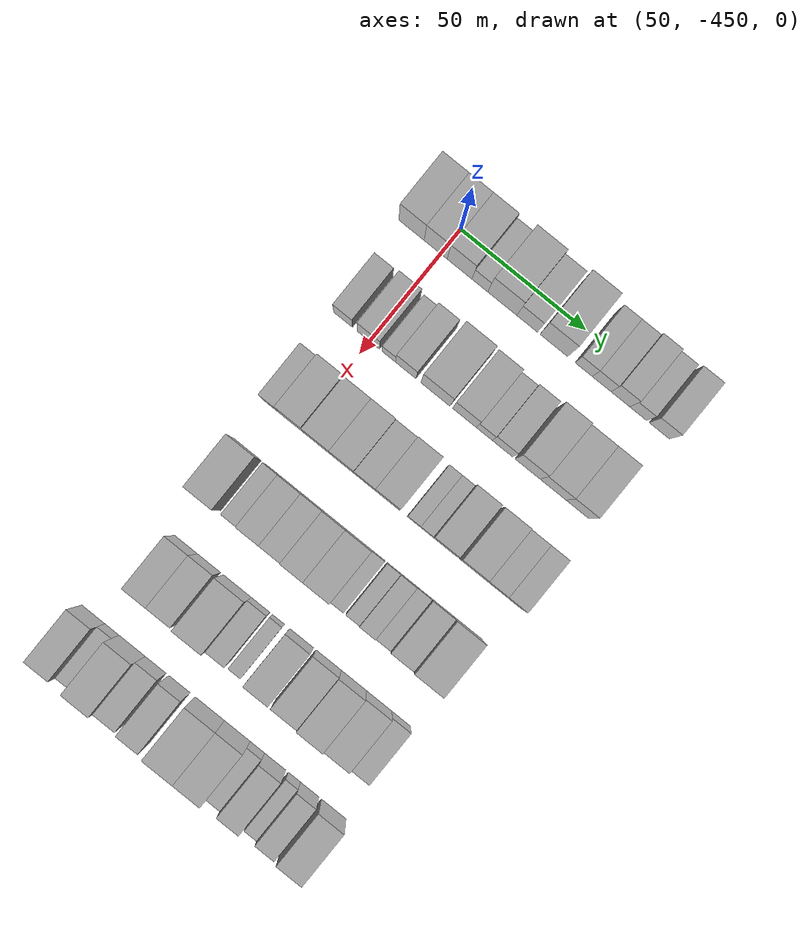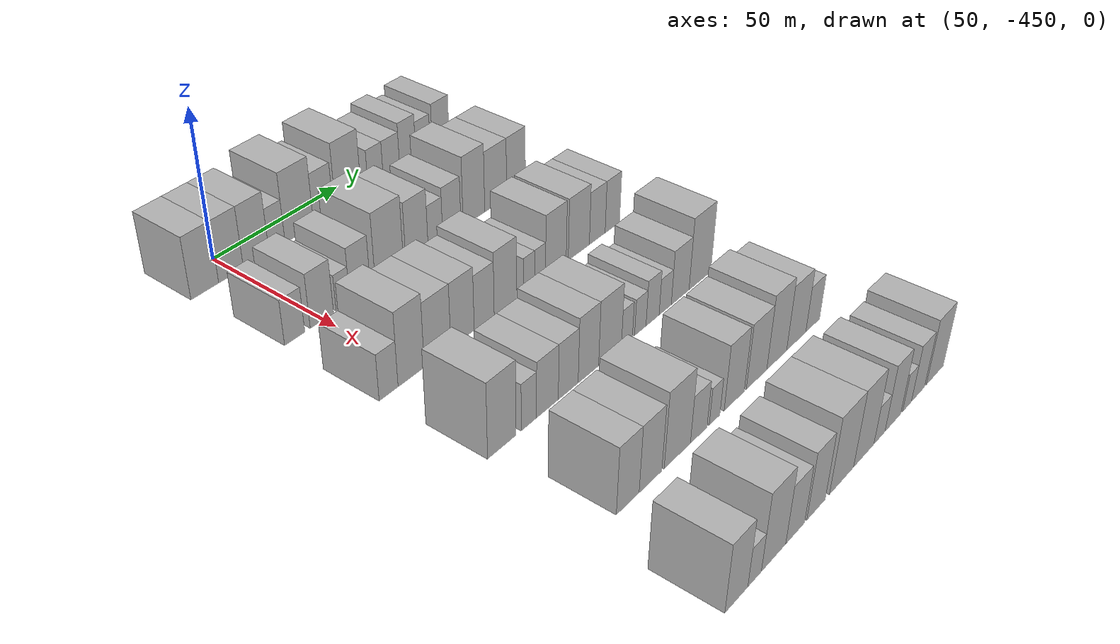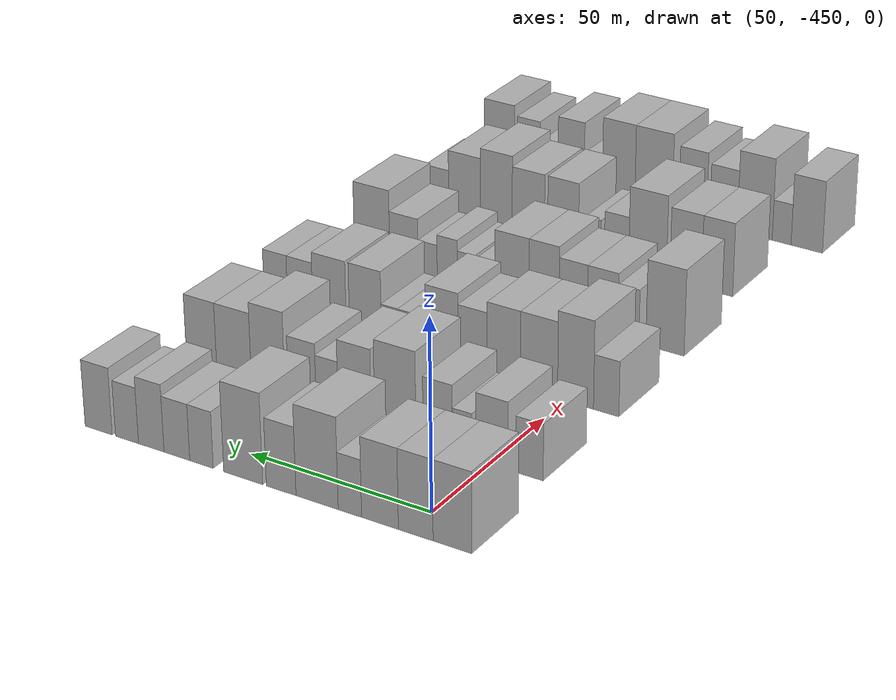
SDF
<sdf version="1.6">
 <world name="default">
  <model name="building_11">
   <static>1</static>
   <pose>50.0000 -461.7332 0 0.000000 0.000000 0.000000</pose>
   <link name="link">
    <pose>0 0 10.50 0 0 0</pose>
    <collision name="collision"><geometry><box><size>20.0000 10.0792 21.0000</size></box></geometry></collision>
    <visual name="visual">
     <cast_shadows>0</cast_shadows>
     <geometry><box><size>20.0000 10.0792 21.0000</size></box></geometry>
     <material>
      <script>
       <uri>model://HANNAS_wall/materials/scripts</uri>
       <uri>model://HANNAS_wall/materials/textures</uri>
       <name>vrc/HANNAS_wall</name>
      </script>
     </material>
    </visual>
   </link>
  </model>
  <model name="building_12">
   <static>1</static>
   <pose>50.0000 -452.0765 0 0.000000 0.000000 0.000000</pose>
   <link name="link">
    <pose>0 0 10.50 0 0 0</pose>
    <collision name="collision"><geometry><box><size>20.0000 9.2342 21.0000</size></box></geometry></collision>
    <visual name="visual">
     <cast_shadows>0</cast_shadows>
     <geometry><box><size>20.0000 9.2342 21.0000</size></box></geometry>
     <material>
      <script>
       <uri>model://HANNAS_wall/materials/scripts</uri>
       <uri>model://HANNAS_wall/materials/textures</uri>
       <name>vrc/HANNAS_wall</name>
      </script>
     </material>
    </visual>
   </link>
  </model>
  <model name="building_13">
   <static>1</static>
   <pose>50.0000 -442.5232 0 0.000000 0.000000 0.000000</pose>
   <link name="link">
    <pose>0 0 10.50 0 0 0</pose>
    <collision name="collision"><geometry><box><size>20.0000 9.8725 21.0000</size></box></geometry></collision>
    <visual name="visual">
     <cast_shadows>0</cast_shadows>
     <geometry><box><size>20.0000 9.8725 21.0000</size></box></geometry>
     <material>
      <script>
       <uri>model://HANNAS_wall/materials/scripts</uri>
       <uri>model://HANNAS_wall/materials/textures</uri>
       <name>vrc/HANNAS_wall</name>
      </script>
     </material>
    </visual>
   </link>
  </model>
  <model name="building_14">
   <static>1</static>
   <pose>50.0000 -434.4015 0 0.000000 0.000000 0.000000</pose>
   <link name="link">
    <pose>0 0 7.50 0 0 0</pose>
    <collision name="collision"><geometry><box><size>20.0000 6.3709 15.0000</size></box></geometry></collision>
    <visual name="visual">
     <cast_shadows>0</cast_shadows>
     <geometry><box><size>20.0000 6.3709 15.0000</size></box></geometry>
     <material>
      <script>
       <uri>model://HANNAS_wall/materials/scripts</uri>
       <uri>model://HANNAS_wall/materials/textures</uri>
       <name>vrc/HANNAS_wall</name>
      </script>
     </material>
    </visual>
   </link>
  </model>
  <model name="building_15">
   <static>1</static>
   <pose>50.0000 -425.4119 0 0.000000 0.000000 0.000000</pose>
   <link name="link">
    <pose>0 0 12.00 0 0 0</pose>
    <collision name="collision"><geometry><box><size>20.0000 11.6083 24.0000</size></box></geometry></collision>
    <visual name="visual">
     <cast_shadows>0</cast_shadows>
     <geometry><box><size>20.0000 11.6083 24.0000</size></box></geometry>
     <material>
      <script>
       <uri>model://HANNAS_wall/materials/scripts</uri>
       <uri>model://HANNAS_wall/materials/textures</uri>
       <name>vrc/HANNAS_wall</name>
      </script>
     </material>
    </visual>
   </link>
  </model>
  <model name="building_16">
   <static>1</static>
   <pose>50.0000 -415.4682 0 0.000000 0.000000 0.000000</pose>
   <link name="link">
    <pose>0 0 9.00 0 0 0</pose>
    <collision name="collision"><geometry><box><size>20.0000 8.2792 18.0000</size></box></geometry></collision>
    <visual name="visual">
     <cast_shadows>0</cast_shadows>
     <geometry><box><size>20.0000 8.2792 18.0000</size></box></geometry>
     <material>
      <script>
       <uri>model://HANNAS_wall/materials/scripts</uri>
       <uri>model://HANNAS_wall/materials/textures</uri>
       <name>vrc/HANNAS_wall</name>
      </script>
     </material>
    </visual>
   </link>
  </model>
  <model name="building_17">
   <static>1</static>
   <pose>50.0000 -404.8006 0 0.000000 0.000000 0.000000</pose>
   <link name="link">
    <pose>0 0 12.00 0 0 0</pose>
    <collision name="collision"><geometry><box><size>20.0000 11.0559 24.0000</size></box></geometry></collision>
    <visual name="visual">
     <cast_shadows>0</cast_shadows>
     <geometry><box><size>20.0000 11.0559 24.0000</size></box></geometry>
     <material>
      <script>
       <uri>model://HANNAS_wall/materials/scripts</uri>
       <uri>model://HANNAS_wall/materials/textures</uri>
       <name>vrc/HANNAS_wall</name>
      </script>
     </material>
    </visual>
   </link>
  </model>
  <model name="building_18">
   <static>1</static>
   <pose>50.0000 -392.8752 0 0.000000 0.000000 0.000000</pose>
   <link name="link">
    <pose>0 0 7.50 0 0 0</pose>
    <collision name="collision"><geometry><box><size>20.0000 6.7949 15.0000</size></box></geometry></collision>
    <visual name="visual">
     <cast_shadows>0</cast_shadows>
     <geometry><box><size>20.0000 6.7949 15.0000</size></box></geometry>
     <material>
      <script>
       <uri>model://HANNAS_wall/materials/scripts</uri>
       <uri>model://HANNAS_wall/materials/textures</uri>
       <name>vrc/HANNAS_wall</name>
      </script>
     </material>
    </visual>
   </link>
  </model>
  <model name="building_19">
   <static>1</static>
   <pose>50.0000 -385.7423 0 0.000000 0.000000 0.000000</pose>
   <link name="link">
    <pose>0 0 7.50 0 0 0</pose>
    <collision name="collision"><geometry><box><size>20.0000 7.4709 15.0000</size></box></geometry></collision>
    <visual name="visual">
     <cast_shadows>0</cast_shadows>
     <geometry><box><size>20.0000 7.4709 15.0000</size></box></geometry>
     <material>
      <script>
       <uri>model://HANNAS_wall/materials/scripts</uri>
       <uri>model://HANNAS_wall/materials/textures</uri>
       <name>vrc/HANNAS_wall</name>
      </script>
     </material>
    </visual>
   </link>
  </model>
  <model name="building_20">
   <static>1</static>
   <pose>50.0000 -378.2463 0 0.000000 0.000000 0.000000</pose>
   <link name="link">
    <pose>0 0 9.00 0 0 0</pose>
    <collision name="collision"><geometry><box><size>20.0000 7.5212 18.0000</size></box></geometry></collision>
    <visual name="visual">
     <cast_shadows>0</cast_shadows>
     <geometry><box><size>20.0000 7.5212 18.0000</size></box></geometry>
     <material>
      <script>
       <uri>model://HANNAS_wall/materials/scripts</uri>
       <uri>model://HANNAS_wall/materials/textures</uri>
       <name>vrc/HANNAS_wall</name>
      </script>
     </material>
    </visual>
   </link>
  </model>
  <model name="building_21">
   <static>1</static>
   <pose>50.0000 -371.0788 0 0.000000 0.000000 0.000000</pose>
   <link name="link">
    <pose>0 0 7.50 0 0 0</pose>
    <collision name="collision"><geometry><box><size>20.0000 6.8137 15.0000</size></box></geometry></collision>
    <visual name="visual">
     <cast_shadows>0</cast_shadows>
     <geometry><box><size>20.0000 6.8137 15.0000</size></box></geometry>
     <material>
      <script>
       <uri>model://HANNAS_wall/materials/scripts</uri>
       <uri>model://HANNAS_wall/materials/textures</uri>
       <name>vrc/HANNAS_wall</name>
      </script>
     </material>
    </visual>
   </link>
  </model>
  <model name="building_22">
   <static>1</static>
   <pose>50.0000 -362.6278 0 0.000000 0.000000 0.000000</pose>
   <link name="link">
    <pose>0 0 9.00 0 0 0</pose>
    <collision name="collision"><geometry><box><size>20.0000 8.0885 18.0000</size></box></geometry></collision>
    <visual name="visual">
     <cast_shadows>0</cast_shadows>
     <geometry><box><size>20.0000 8.0885 18.0000</size></box></geometry>
     <material>
      <script>
       <uri>model://HANNAS_wall/materials/scripts</uri>
       <uri>model://HANNAS_wall/materials/textures</uri>
       <name>vrc/HANNAS_wall</name>
      </script>
     </material>
    </visual>
   </link>
  </model>
  <model name="building_138">
   <static>1</static>
   <pose>85.0000 -460.6675 0 0.000000 0.000000 0.000000</pose>
   <link name="link">
    <pose>0 0 7.50 0 0 0</pose>
    <collision name="collision"><geometry><box><size>20.0000 7.4258 15.0000</size></box></geometry></collision>
    <visual name="visual">
     <cast_shadows>0</cast_shadows>
     <geometry><box><size>20.0000 7.4258 15.0000</size></box></geometry>
     <material>
      <script>
       <uri>model://HANNAS_wall/materials/scripts</uri>
       <uri>model://HANNAS_wall/materials/textures</uri>
       <name>vrc/HANNAS_wall</name>
      </script>
     </material>
    </visual>
   </link>
  </model>
  <model name="building_139">
   <static>1</static>
   <pose>85.0000 -450.5459 0 0.000000 0.000000 0.000000</pose>
   <link name="link">
    <pose>0 0 9.00 0 0 0</pose>
    <collision name="collision"><geometry><box><size>20.0000 8.8174 18.0000</size></box></geometry></collision>
    <visual name="visual">
     <cast_shadows>0</cast_shadows>
     <geometry><box><size>20.0000 8.8174 18.0000</size></box></geometry>
     <material>
      <script>
       <uri>model://HANNAS_wall/materials/scripts</uri>
       <uri>model://HANNAS_wall/materials/textures</uri>
       <name>vrc/HANNAS_wall</name>
      </script>
     </material>
    </visual>
   </link>
  </model>
  <model name="building_140">
   <static>1</static>
   <pose>85.0000 -442.4545 0 0.000000 0.000000 0.000000</pose>
   <link name="link">
    <pose>0 0 6.00 0 0 0</pose>
    <collision name="collision"><geometry><box><size>20.0000 5.3653 12.0000</size></box></geometry></collision>
    <visual name="visual">
     <cast_shadows>0</cast_shadows>
     <geometry><box><size>20.0000 5.3653 12.0000</size></box></geometry>
     <material>
      <script>
       <uri>model://HANNAS_wall/materials/scripts</uri>
       <uri>model://HANNAS_wall/materials/textures</uri>
       <name>vrc/HANNAS_wall</name>
      </script>
     </material>
    </visual>
   </link>
  </model>
  <model name="building_141">
   <static>1</static>
   <pose>85.0000 -435.6940 0 0.000000 0.000000 0.000000</pose>
   <link name="link">
    <pose>0 0 9.00 0 0 0</pose>
    <collision name="collision"><geometry><box><size>20.0000 8.1556 18.0000</size></box></geometry></collision>
    <visual name="visual">
     <cast_shadows>0</cast_shadows>
     <geometry><box><size>20.0000 8.1556 18.0000</size></box></geometry>
     <material>
      <script>
       <uri>model://HANNAS_wall/materials/scripts</uri>
       <uri>model://HANNAS_wall/materials/textures</uri>
       <name>vrc/HANNAS_wall</name>
      </script>
     </material>
    </visual>
   </link>
  </model>
  <model name="building_142">
   <static>1</static>
   <pose>85.0000 -423.8074 0 0.000000 0.000000 0.000000</pose>
   <link name="link">
    <pose>0 0 12.00 0 0 0</pose>
    <collision name="collision"><geometry><box><size>20.0000 11.6177 24.0000</size></box></geometry></collision>
    <visual name="visual">
     <cast_shadows>0</cast_shadows>
     <geometry><box><size>20.0000 11.6177 24.0000</size></box></geometry>
     <material>
      <script>
       <uri>model://HANNAS_wall/materials/scripts</uri>
       <uri>model://HANNAS_wall/materials/textures</uri>
       <name>vrc/HANNAS_wall</name>
      </script>
     </material>
    </visual>
   </link>
  </model>
  <model name="building_143">
   <static>1</static>
   <pose>85.0000 -412.2549 0 0.000000 0.000000 0.000000</pose>
   <link name="link">
    <pose>0 0 10.50 0 0 0</pose>
    <collision name="collision"><geometry><box><size>20.0000 9.4872 21.0000</size></box></geometry></collision>
    <visual name="visual">
     <cast_shadows>0</cast_shadows>
     <geometry><box><size>20.0000 9.4872 21.0000</size></box></geometry>
     <material>
      <script>
       <uri>model://HANNAS_wall/materials/scripts</uri>
       <uri>model://HANNAS_wall/materials/textures</uri>
       <name>vrc/HANNAS_wall</name>
      </script>
     </material>
    </visual>
   </link>
  </model>
  <model name="building_144">
   <static>1</static>
   <pose>85.0000 -404.3135 0 0.000000 0.000000 0.000000</pose>
   <link name="link">
    <pose>0 0 7.50 0 0 0</pose>
    <collision name="collision"><geometry><box><size>20.0000 6.3956 15.0000</size></box></geometry></collision>
    <visual name="visual">
     <cast_shadows>0</cast_shadows>
     <geometry><box><size>20.0000 6.3956 15.0000</size></box></geometry>
     <material>
      <script>
       <uri>model://HANNAS_wall/materials/scripts</uri>
       <uri>model://HANNAS_wall/materials/textures</uri>
       <name>vrc/HANNAS_wall</name>
      </script>
     </material>
    </visual>
   </link>
  </model>
  <model name="building_145">
   <static>1</static>
   <pose>85.0000 -397.0616 0 0.000000 0.000000 0.000000</pose>
   <link name="link">
    <pose>0 0 9.00 0 0 0</pose>
    <collision name="collision"><geometry><box><size>20.0000 8.1083 18.0000</size></box></geometry></collision>
    <visual name="visual">
     <cast_shadows>0</cast_shadows>
     <geometry><box><size>20.0000 8.1083 18.0000</size></box></geometry>
     <material>
      <script>
       <uri>model://HANNAS_wall/materials/scripts</uri>
       <uri>model://HANNAS_wall/materials/textures</uri>
       <name>vrc/HANNAS_wall</name>
      </script>
     </material>
    </visual>
   </link>
  </model>
  <model name="building_146">
   <static>1</static>
   <pose>85.0000 -387.0423 0 0.000000 0.000000 0.000000</pose>
   <link name="link">
    <pose>0 0 12.00 0 0 0</pose>
    <collision name="collision"><geometry><box><size>20.0000 9.9304 24.0000</size></box></geometry></collision>
    <visual name="visual">
     <cast_shadows>0</cast_shadows>
     <geometry><box><size>20.0000 9.9304 24.0000</size></box></geometry>
     <material>
      <script>
       <uri>model://HANNAS_wall/materials/scripts</uri>
       <uri>model://HANNAS_wall/materials/textures</uri>
       <name>vrc/HANNAS_wall</name>
      </script>
     </material>
    </visual>
   </link>
  </model>
  <model name="building_147">
   <static>1</static>
   <pose>85.0000 -376.8812 0 0.000000 0.000000 0.000000</pose>
   <link name="link">
    <pose>0 0 10.50 0 0 0</pose>
    <collision name="collision"><geometry><box><size>20.0000 10.3918 21.0000</size></box></geometry></collision>
    <visual name="visual">
     <cast_shadows>0</cast_shadows>
     <geometry><box><size>20.0000 10.3918 21.0000</size></box></geometry>
     <material>
      <script>
       <uri>model://HANNAS_wall/materials/scripts</uri>
       <uri>model://HANNAS_wall/materials/textures</uri>
       <name>vrc/HANNAS_wall</name>
      </script>
     </material>
    </visual>
   </link>
  </model>
  <model name="building_148">
   <static>1</static>
   <pose>85.0000 -367.1116 0 0.000000 0.000000 0.000000</pose>
   <link name="link">
    <pose>0 0 10.50 0 0 0</pose>
    <collision name="collision"><geometry><box><size>20.0000 9.1476 21.0000</size></box></geometry></collision>
    <visual name="visual">
     <cast_shadows>0</cast_shadows>
     <geometry><box><size>20.0000 9.1476 21.0000</size></box></geometry>
     <material>
      <script>
       <uri>model://HANNAS_wall/materials/scripts</uri>
       <uri>model://HANNAS_wall/materials/textures</uri>
       <name>vrc/HANNAS_wall</name>
      </script>
     </material>
    </visual>
   </link>
  </model>
  <model name="building_266">
   <static>1</static>
   <pose>120.0000 -461.2573 0 0.000000 0.000000 0.000000</pose>
   <link name="link">
    <pose>0 0 7.50 0 0 0</pose>
    <collision name="collision"><geometry><box><size>20.0000 6.9912 15.0000</size></box></geometry></collision>
    <visual name="visual">
     <cast_shadows>0</cast_shadows>
     <geometry><box><size>20.0000 6.9912 15.0000</size></box></geometry>
     <material>
      <script>
       <uri>model://HANNAS_wall/materials/scripts</uri>
       <uri>model://HANNAS_wall/materials/textures</uri>
       <name>vrc/HANNAS_wall</name>
      </script>
     </material>
    </visual>
   </link>
  </model>
  <model name="building_267">
   <static>1</static>
   <pose>120.0000 -452.7667 0 0.000000 0.000000 0.000000</pose>
   <link name="link">
    <pose>0 0 12.00 0 0 0</pose>
    <collision name="collision"><geometry><box><size>20.0000 9.9900 24.0000</size></box></geometry></collision>
    <visual name="visual">
     <cast_shadows>0</cast_shadows>
     <geometry><box><size>20.0000 9.9900 24.0000</size></box></geometry>
     <material>
      <script>
       <uri>model://HANNAS_wall/materials/scripts</uri>
       <uri>model://HANNAS_wall/materials/textures</uri>
       <name>vrc/HANNAS_wall</name>
      </script>
     </material>
    </visual>
   </link>
  </model>
  <model name="building_268">
   <static>1</static>
   <pose>120.0000 -442.5422 0 0.000000 0.000000 0.000000</pose>
   <link name="link">
    <pose>0 0 10.50 0 0 0</pose>
    <collision name="collision"><geometry><box><size>20.0000 10.4589 21.0000</size></box></geometry></collision>
    <visual name="visual">
     <cast_shadows>0</cast_shadows>
     <geometry><box><size>20.0000 10.4589 21.0000</size></box></geometry>
     <material>
      <script>
       <uri>model://HANNAS_wall/materials/scripts</uri>
       <uri>model://HANNAS_wall/materials/textures</uri>
       <name>vrc/HANNAS_wall</name>
      </script>
     </material>
    </visual>
   </link>
  </model>
  <model name="building_269">
   <static>1</static>
   <pose>120.0000 -432.5547 0 0.000000 0.000000 0.000000</pose>
   <link name="link">
    <pose>0 0 10.50 0 0 0</pose>
    <collision name="collision"><geometry><box><size>20.0000 9.5162 21.0000</size></box></geometry></collision>
    <visual name="visual">
     <cast_shadows>0</cast_shadows>
     <geometry><box><size>20.0000 9.5162 21.0000</size></box></geometry>
     <material>
      <script>
       <uri>model://HANNAS_wall/materials/scripts</uri>
       <uri>model://HANNAS_wall/materials/textures</uri>
       <name>vrc/HANNAS_wall</name>
      </script>
     </material>
    </visual>
   </link>
  </model>
  <model name="building_270">
   <static>1</static>
   <pose>120.0000 -423.6153 0 0.000000 0.000000 0.000000</pose>
   <link name="link">
    <pose>0 0 9.00 0 0 0</pose>
    <collision name="collision"><geometry><box><size>20.0000 8.3625 18.0000</size></box></geometry></collision>
    <visual name="visual">
     <cast_shadows>0</cast_shadows>
     <geometry><box><size>20.0000 8.3625 18.0000</size></box></geometry>
     <material>
      <script>
       <uri>model://HANNAS_wall/materials/scripts</uri>
       <uri>model://HANNAS_wall/materials/textures</uri>
       <name>vrc/HANNAS_wall</name>
      </script>
     </material>
    </visual>
   </link>
  </model>
  <model name="building_271">
   <static>1</static>
   <pose>120.0000 -414.6276 0 0.000000 0.000000 0.000000</pose>
   <link name="link">
    <pose>0 0 10.50 0 0 0</pose>
    <collision name="collision"><geometry><box><size>20.0000 9.6129 21.0000</size></box></geometry></collision>
    <visual name="visual">
     <cast_shadows>0</cast_shadows>
     <geometry><box><size>20.0000 9.6129 21.0000</size></box></geometry>
     <material>
      <script>
       <uri>model://HANNAS_wall/materials/scripts</uri>
       <uri>model://HANNAS_wall/materials/textures</uri>
       <name>vrc/HANNAS_wall</name>
      </script>
     </material>
    </visual>
   </link>
  </model>
  <model name="building_272">
   <static>1</static>
   <pose>120.0000 -404.3074 0 0.000000 0.000000 0.000000</pose>
   <link name="link">
    <pose>0 0 6.00 0 0 0</pose>
    <collision name="collision"><geometry><box><size>20.0000 5.0275 12.0000</size></box></geometry></collision>
    <visual name="visual">
     <cast_shadows>0</cast_shadows>
     <geometry><box><size>20.0000 5.0275 12.0000</size></box></geometry>
     <material>
      <script>
       <uri>model://HANNAS_wall/materials/scripts</uri>
       <uri>model://HANNAS_wall/materials/textures</uri>
       <name>vrc/HANNAS_wall</name>
      </script>
     </material>
    </visual>
   </link>
  </model>
  <model name="building_273">
   <static>1</static>
   <pose>120.0000 -399.2994 0 0.000000 0.000000 0.000000</pose>
   <link name="link">
    <pose>0 0 6.00 0 0 0</pose>
    <collision name="collision"><geometry><box><size>20.0000 4.9886 12.0000</size></box></geometry></collision>
    <visual name="visual">
     <cast_shadows>0</cast_shadows>
     <geometry><box><size>20.0000 4.9886 12.0000</size></box></geometry>
     <material>
      <script>
       <uri>model://HANNAS_wall/materials/scripts</uri>
       <uri>model://HANNAS_wall/materials/textures</uri>
       <name>vrc/HANNAS_wall</name>
      </script>
     </material>
    </visual>
   </link>
  </model>
  <model name="building_274">
   <static>1</static>
   <pose>120.0000 -392.0100 0 0.000000 0.000000 0.000000</pose>
   <link name="link">
    <pose>0 0 10.50 0 0 0</pose>
    <collision name="collision"><geometry><box><size>20.0000 9.5903 21.0000</size></box></geometry></collision>
    <visual name="visual">
     <cast_shadows>0</cast_shadows>
     <geometry><box><size>20.0000 9.5903 21.0000</size></box></geometry>
     <material>
      <script>
       <uri>model://HANNAS_wall/materials/scripts</uri>
       <uri>model://HANNAS_wall/materials/textures</uri>
       <name>vrc/HANNAS_wall</name>
      </script>
     </material>
    </visual>
   </link>
  </model>
  <model name="building_275">
   <static>1</static>
   <pose>120.0000 -381.1484 0 0.000000 0.000000 0.000000</pose>
   <link name="link">
    <pose>0 0 10.50 0 0 0</pose>
    <collision name="collision"><geometry><box><size>20.0000 10.1328 21.0000</size></box></geometry></collision>
    <visual name="visual">
     <cast_shadows>0</cast_shadows>
     <geometry><box><size>20.0000 10.1328 21.0000</size></box></geometry>
     <material>
      <script>
       <uri>model://HANNAS_wall/materials/scripts</uri>
       <uri>model://HANNAS_wall/materials/textures</uri>
       <name>vrc/HANNAS_wall</name>
      </script>
     </material>
    </visual>
   </link>
  </model>
  <model name="building_276">
   <static>1</static>
   <pose>120.0000 -372.1924 0 0.000000 0.000000 0.000000</pose>
   <link name="link">
    <pose>0 0 9.00 0 0 0</pose>
    <collision name="collision"><geometry><box><size>20.0000 7.7791 18.0000</size></box></geometry></collision>
    <visual name="visual">
     <cast_shadows>0</cast_shadows>
     <geometry><box><size>20.0000 7.7791 18.0000</size></box></geometry>
     <material>
      <script>
       <uri>model://HANNAS_wall/materials/scripts</uri>
       <uri>model://HANNAS_wall/materials/textures</uri>
       <name>vrc/HANNAS_wall</name>
      </script>
     </material>
    </visual>
   </link>
  </model>
  <model name="building_277">
   <static>1</static>
   <pose>120.0000 -364.6634 0 0.000000 0.000000 0.000000</pose>
   <link name="link">
    <pose>0 0 9.00 0 0 0</pose>
    <collision name="collision"><geometry><box><size>20.0000 7.2789 18.0000</size></box></geometry></collision>
    <visual name="visual">
     <cast_shadows>0</cast_shadows>
     <geometry><box><size>20.0000 7.2789 18.0000</size></box></geometry>
     <material>
      <script>
       <uri>model://HANNAS_wall/materials/scripts</uri>
       <uri>model://HANNAS_wall/materials/textures</uri>
       <name>vrc/HANNAS_wall</name>
      </script>
     </material>
    </visual>
   </link>
  </model>
  <model name="building_405">
   <static>1</static>
   <pose>155.0000 -458.3140 0 0.000000 0.000000 0.000000</pose>
   <link name="link">
    <pose>0 0 12.00 0 0 0</pose>
    <collision name="collision"><geometry><box><size>20.0000 10.8458 24.0000</size></box></geometry></collision>
    <visual name="visual">
     <cast_shadows>0</cast_shadows>
     <geometry><box><size>20.0000 10.8458 24.0000</size></box></geometry>
     <material>
      <script>
       <uri>model://HANNAS_wall/materials/scripts</uri>
       <uri>model://HANNAS_wall/materials/textures</uri>
       <name>vrc/HANNAS_wall</name>
      </script>
     </material>
    </visual>
   </link>
  </model>
  <model name="building_406">
   <static>1</static>
   <pose>155.0000 -447.8860 0 0.000000 0.000000 0.000000</pose>
   <link name="link">
    <pose>0 0 7.50 0 0 0</pose>
    <collision name="collision"><geometry><box><size>20.0000 6.0102 15.0000</size></box></geometry></collision>
    <visual name="visual">
     <cast_shadows>0</cast_shadows>
     <geometry><box><size>20.0000 6.0102 15.0000</size></box></geometry>
     <material>
      <script>
       <uri>model://HANNAS_wall/materials/scripts</uri>
       <uri>model://HANNAS_wall/materials/textures</uri>
       <name>vrc/HANNAS_wall</name>
      </script>
     </material>
    </visual>
   </link>
  </model>
  <model name="building_407">
   <static>1</static>
   <pose>155.0000 -440.4311 0 0.000000 0.000000 0.000000</pose>
   <link name="link">
    <pose>0 0 9.00 0 0 0</pose>
    <collision name="collision"><geometry><box><size>20.0000 8.8995 18.0000</size></box></geometry></collision>
    <visual name="visual">
     <cast_shadows>0</cast_shadows>
     <geometry><box><size>20.0000 8.8995 18.0000</size></box></geometry>
     <material>
      <script>
       <uri>model://HANNAS_wall/materials/scripts</uri>
       <uri>model://HANNAS_wall/materials/textures</uri>
       <name>vrc/HANNAS_wall</name>
      </script>
     </material>
    </visual>
   </link>
  </model>
  <model name="building_408">
   <static>1</static>
   <pose>155.0000 -431.8255 0 0.000000 0.000000 0.000000</pose>
   <link name="link">
    <pose>0 0 9.00 0 0 0</pose>
    <collision name="collision"><geometry><box><size>20.0000 8.3117 18.0000</size></box></geometry></collision>
    <visual name="visual">
     <cast_shadows>0</cast_shadows>
     <geometry><box><size>20.0000 8.3117 18.0000</size></box></geometry>
     <material>
      <script>
       <uri>model://HANNAS_wall/materials/scripts</uri>
       <uri>model://HANNAS_wall/materials/textures</uri>
       <name>vrc/HANNAS_wall</name>
      </script>
     </material>
    </visual>
   </link>
  </model>
  <model name="building_409">
   <static>1</static>
   <pose>155.0000 -423.2456 0 0.000000 0.000000 0.000000</pose>
   <link name="link">
    <pose>0 0 10.50 0 0 0</pose>
    <collision name="collision"><geometry><box><size>20.0000 8.8480 21.0000</size></box></geometry></collision>
    <visual name="visual">
     <cast_shadows>0</cast_shadows>
     <geometry><box><size>20.0000 8.8480 21.0000</size></box></geometry>
     <material>
      <script>
       <uri>model://HANNAS_wall/materials/scripts</uri>
       <uri>model://HANNAS_wall/materials/textures</uri>
       <name>vrc/HANNAS_wall</name>
      </script>
     </material>
    </visual>
   </link>
  </model>
  <model name="building_410">
   <static>1</static>
   <pose>155.0000 -413.7485 0 0.000000 0.000000 0.000000</pose>
   <link name="link">
    <pose>0 0 10.50 0 0 0</pose>
    <collision name="collision"><geometry><box><size>20.0000 10.1461 21.0000</size></box></geometry></collision>
    <visual name="visual">
     <cast_shadows>0</cast_shadows>
     <geometry><box><size>20.0000 10.1461 21.0000</size></box></geometry>
     <material>
      <script>
       <uri>model://HANNAS_wall/materials/scripts</uri>
       <uri>model://HANNAS_wall/materials/textures</uri>
       <name>vrc/HANNAS_wall</name>
      </script>
     </material>
    </visual>
   </link>
  </model>
  <model name="building_411">
   <static>1</static>
   <pose>155.0000 -406.1538 0 0.000000 0.000000 0.000000</pose>
   <link name="link">
    <pose>0 0 6.00 0 0 0</pose>
    <collision name="collision"><geometry><box><size>20.0000 5.0434 12.0000</size></box></geometry></collision>
    <visual name="visual">
     <cast_shadows>0</cast_shadows>
     <geometry><box><size>20.0000 5.0434 12.0000</size></box></geometry>
     <material>
      <script>
       <uri>model://HANNAS_wall/materials/scripts</uri>
       <uri>model://HANNAS_wall/materials/textures</uri>
       <name>vrc/HANNAS_wall</name>
      </script>
     </material>
    </visual>
   </link>
  </model>
  <model name="building_412">
   <static>1</static>
   <pose>155.0000 -399.9651 0 0.000000 0.000000 0.000000</pose>
   <link name="link">
    <pose>0 0 6.00 0 0 0</pose>
    <collision name="collision"><geometry><box><size>20.0000 5.3340 12.0000</size></box></geometry></collision>
    <visual name="visual">
     <cast_shadows>0</cast_shadows>
     <geometry><box><size>20.0000 5.3340 12.0000</size></box></geometry>
     <material>
      <script>
       <uri>model://HANNAS_wall/materials/scripts</uri>
       <uri>model://HANNAS_wall/materials/textures</uri>
       <name>vrc/HANNAS_wall</name>
      </script>
     </material>
    </visual>
   </link>
  </model>
  <model name="building_413">
   <static>1</static>
   <pose>155.0000 -394.1825 0 0.000000 0.000000 0.000000</pose>
   <link name="link">
    <pose>0 0 7.50 0 0 0</pose>
    <collision name="collision"><geometry><box><size>20.0000 6.2313 15.0000</size></box></geometry></collision>
    <visual name="visual">
     <cast_shadows>0</cast_shadows>
     <geometry><box><size>20.0000 6.2313 15.0000</size></box></geometry>
     <material>
      <script>
       <uri>model://HANNAS_wall/materials/scripts</uri>
       <uri>model://HANNAS_wall/materials/textures</uri>
       <name>vrc/HANNAS_wall</name>
      </script>
     </material>
    </visual>
   </link>
  </model>
  <model name="building_414">
   <static>1</static>
   <pose>155.0000 -388.1107 0 0.000000 0.000000 0.000000</pose>
   <link name="link">
    <pose>0 0 6.00 0 0 0</pose>
    <collision name="collision"><geometry><box><size>20.0000 5.9122 12.0000</size></box></geometry></collision>
    <visual name="visual">
     <cast_shadows>0</cast_shadows>
     <geometry><box><size>20.0000 5.9122 12.0000</size></box></geometry>
     <material>
      <script>
       <uri>model://HANNAS_wall/materials/scripts</uri>
       <uri>model://HANNAS_wall/materials/textures</uri>
       <name>vrc/HANNAS_wall</name>
      </script>
     </material>
    </visual>
   </link>
  </model>
  <model name="building_415">
   <static>1</static>
   <pose>155.0000 -380.7423 0 0.000000 0.000000 0.000000</pose>
   <link name="link">
    <pose>0 0 9.00 0 0 0</pose>
    <collision name="collision"><geometry><box><size>20.0000 8.8246 18.0000</size></box></geometry></collision>
    <visual name="visual">
     <cast_shadows>0</cast_shadows>
     <geometry><box><size>20.0000 8.8246 18.0000</size></box></geometry>
     <material>
      <script>
       <uri>model://HANNAS_wall/materials/scripts</uri>
       <uri>model://HANNAS_wall/materials/textures</uri>
       <name>vrc/HANNAS_wall</name>
      </script>
     </material>
    </visual>
   </link>
  </model>
  <model name="building_416">
   <static>1</static>
   <pose>155.0000 -370.7782 0 0.000000 0.000000 0.000000</pose>
   <link name="link">
    <pose>0 0 12.00 0 0 0</pose>
    <collision name="collision"><geometry><box><size>20.0000 11.1036 24.0000</size></box></geometry></collision>
    <visual name="visual">
     <cast_shadows>0</cast_shadows>
     <geometry><box><size>20.0000 11.1036 24.0000</size></box></geometry>
     <material>
      <script>
       <uri>model://HANNAS_wall/materials/scripts</uri>
       <uri>model://HANNAS_wall/materials/textures</uri>
       <name>vrc/HANNAS_wall</name>
      </script>
     </material>
    </visual>
   </link>
  </model>
  <model name="building_525">
   <static>1</static>
   <pose>190.0000 -454.7263 0 0.000000 0.000000 0.000000</pose>
   <link name="link">
    <pose>0 0 10.50 0 0 0</pose>
    <collision name="collision"><geometry><box><size>20.0000 9.0859 21.0000</size></box></geometry></collision>
    <visual name="visual">
     <cast_shadows>0</cast_shadows>
     <geometry><box><size>20.0000 9.0859 21.0000</size></box></geometry>
     <material>
      <script>
       <uri>model://HANNAS_wall/materials/scripts</uri>
       <uri>model://HANNAS_wall/materials/textures</uri>
       <name>vrc/HANNAS_wall</name>
      </script>
     </material>
    </visual>
   </link>
  </model>
  <model name="building_526">
   <static>1</static>
   <pose>190.0000 -445.5021 0 0.000000 0.000000 0.000000</pose>
   <link name="link">
    <pose>0 0 10.50 0 0 0</pose>
    <collision name="collision"><geometry><box><size>20.0000 9.3625 21.0000</size></box></geometry></collision>
    <visual name="visual">
     <cast_shadows>0</cast_shadows>
     <geometry><box><size>20.0000 9.3625 21.0000</size></box></geometry>
     <material>
      <script>
       <uri>model://HANNAS_wall/materials/scripts</uri>
       <uri>model://HANNAS_wall/materials/textures</uri>
       <name>vrc/HANNAS_wall</name>
      </script>
     </material>
    </visual>
   </link>
  </model>
  <model name="building_527">
   <static>1</static>
   <pose>190.0000 -434.1639 0 0.000000 0.000000 0.000000</pose>
   <link name="link">
    <pose>0 0 12.00 0 0 0</pose>
    <collision name="collision"><geometry><box><size>20.0000 11.3139 24.0000</size></box></geometry></collision>
    <visual name="visual">
     <cast_shadows>0</cast_shadows>
     <geometry><box><size>20.0000 11.3139 24.0000</size></box></geometry>
     <material>
      <script>
       <uri>model://HANNAS_wall/materials/scripts</uri>
       <uri>model://HANNAS_wall/materials/textures</uri>
       <name>vrc/HANNAS_wall</name>
      </script>
     </material>
    </visual>
   </link>
  </model>
  <model name="building_528">
   <static>1</static>
   <pose>190.0000 -424.8110 0 0.000000 0.000000 0.000000</pose>
   <link name="link">
    <pose>0 0 7.50 0 0 0</pose>
    <collision name="collision"><geometry><box><size>20.0000 7.3918 15.0000</size></box></geometry></collision>
    <visual name="visual">
     <cast_shadows>0</cast_shadows>
     <geometry><box><size>20.0000 7.3918 15.0000</size></box></geometry>
     <material>
      <script>
       <uri>model://HANNAS_wall/materials/scripts</uri>
       <uri>model://HANNAS_wall/materials/textures</uri>
       <name>vrc/HANNAS_wall</name>
      </script>
     </material>
    </visual>
   </link>
  </model>
  <model name="building_529">
   <static>1</static>
   <pose>190.0000 -417.6856 0 0.000000 0.000000 0.000000</pose>
   <link name="link">
    <pose>0 0 6.00 0 0 0</pose>
    <collision name="collision"><geometry><box><size>20.0000 4.8591 12.0000</size></box></geometry></collision>
    <visual name="visual">
     <cast_shadows>0</cast_shadows>
     <geometry><box><size>20.0000 4.8591 12.0000</size></box></geometry>
     <material>
      <script>
       <uri>model://HANNAS_wall/materials/scripts</uri>
       <uri>model://HANNAS_wall/materials/textures</uri>
       <name>vrc/HANNAS_wall</name>
      </script>
     </material>
    </visual>
   </link>
  </model>
  <model name="building_530">
   <static>1</static>
   <pose>190.0000 -408.5066 0 0.000000 0.000000 0.000000</pose>
   <link name="link">
    <pose>0 0 10.50 0 0 0</pose>
    <collision name="collision"><geometry><box><size>20.0000 9.4988 21.0000</size></box></geometry></collision>
    <visual name="visual">
     <cast_shadows>0</cast_shadows>
     <geometry><box><size>20.0000 9.4988 21.0000</size></box></geometry>
     <material>
      <script>
       <uri>model://HANNAS_wall/materials/scripts</uri>
       <uri>model://HANNAS_wall/materials/textures</uri>
       <name>vrc/HANNAS_wall</name>
      </script>
     </material>
    </visual>
   </link>
  </model>
  <model name="building_531">
   <static>1</static>
   <pose>190.0000 -397.7310 0 0.000000 0.000000 0.000000</pose>
   <link name="link">
    <pose>0 0 10.50 0 0 0</pose>
    <collision name="collision"><geometry><box><size>20.0000 10.0523 21.0000</size></box></geometry></collision>
    <visual name="visual">
     <cast_shadows>0</cast_shadows>
     <geometry><box><size>20.0000 10.0523 21.0000</size></box></geometry>
     <material>
      <script>
       <uri>model://HANNAS_wall/materials/scripts</uri>
       <uri>model://HANNAS_wall/materials/textures</uri>
       <name>vrc/HANNAS_wall</name>
      </script>
     </material>
    </visual>
   </link>
  </model>
  <model name="building_532">
   <static>1</static>
   <pose>190.0000 -387.6617 0 0.000000 0.000000 0.000000</pose>
   <link name="link">
    <pose>0 0 12.00 0 0 0</pose>
    <collision name="collision"><geometry><box><size>20.0000 10.0864 24.0000</size></box></geometry></collision>
    <visual name="visual">
     <cast_shadows>0</cast_shadows>
     <geometry><box><size>20.0000 10.0864 24.0000</size></box></geometry>
     <material>
      <script>
       <uri>model://HANNAS_wall/materials/scripts</uri>
       <uri>model://HANNAS_wall/materials/textures</uri>
       <name>vrc/HANNAS_wall</name>
      </script>
     </material>
    </visual>
   </link>
  </model>
  <model name="building_533">
   <static>1</static>
   <pose>190.0000 -377.5720 0 0.000000 0.000000 0.000000</pose>
   <link name="link">
    <pose>0 0 10.50 0 0 0</pose>
    <collision name="collision"><geometry><box><size>20.0000 10.0930 21.0000</size></box></geometry></collision>
    <visual name="visual">
     <cast_shadows>0</cast_shadows>
     <geometry><box><size>20.0000 10.0930 21.0000</size></box></geometry>
     <material>
      <script>
       <uri>model://HANNAS_wall/materials/scripts</uri>
       <uri>model://HANNAS_wall/materials/textures</uri>
       <name>vrc/HANNAS_wall</name>
      </script>
     </material>
    </visual>
   </link>
  </model>
  <model name="building_534">
   <static>1</static>
   <pose>190.0000 -368.8180 0 0.000000 0.000000 0.000000</pose>
   <link name="link">
    <pose>0 0 7.50 0 0 0</pose>
    <collision name="collision"><geometry><box><size>20.0000 7.4149 15.0000</size></box></geometry></collision>
    <visual name="visual">
     <cast_shadows>0</cast_shadows>
     <geometry><box><size>20.0000 7.4149 15.0000</size></box></geometry>
     <material>
      <script>
       <uri>model://HANNAS_wall/materials/scripts</uri>
       <uri>model://HANNAS_wall/materials/textures</uri>
       <name>vrc/HANNAS_wall</name>
      </script>
     </material>
    </visual>
   </link>
  </model>
  <model name="building_644">
   <static>1</static>
   <pose>225.0000 -463.4859 0 0.000000 0.000000 0.000000</pose>
   <link name="link">
    <pose>0 0 10.50 0 0 0</pose>
    <collision name="collision"><geometry><box><size>20.0000 9.2750 21.0000</size></box></geometry></collision>
    <visual name="visual">
     <cast_shadows>0</cast_shadows>
     <geometry><box><size>20.0000 9.2750 21.0000</size></box></geometry>
     <material>
      <script>
       <uri>model://HANNAS_wall/materials/scripts</uri>
       <uri>model://HANNAS_wall/materials/textures</uri>
       <name>vrc/HANNAS_wall</name>
      </script>
     </material>
    </visual>
   </link>
  </model>
  <model name="building_645">
   <static>1</static>
   <pose>225.0000 -456.0299 0 0.000000 0.000000 0.000000</pose>
   <link name="link">
    <pose>0 0 6.00 0 0 0</pose>
    <collision name="collision"><geometry><box><size>20.0000 5.6371 12.0000</size></box></geometry></collision>
    <visual name="visual">
     <cast_shadows>0</cast_shadows>
     <geometry><box><size>20.0000 5.6371 12.0000</size></box></geometry>
     <material>
      <script>
       <uri>model://HANNAS_wall/materials/scripts</uri>
       <uri>model://HANNAS_wall/materials/textures</uri>
       <name>vrc/HANNAS_wall</name>
      </script>
     </material>
    </visual>
   </link>
  </model>
  <model name="building_646">
   <static>1</static>
   <pose>225.0000 -447.9553 0 0.000000 0.000000 0.000000</pose>
   <link name="link">
    <pose>0 0 12.00 0 0 0</pose>
    <collision name="collision"><geometry><box><size>20.0000 10.5121 24.0000</size></box></geometry></collision>
    <visual name="visual">
     <cast_shadows>0</cast_shadows>
     <geometry><box><size>20.0000 10.5121 24.0000</size></box></geometry>
     <material>
      <script>
       <uri>model://HANNAS_wall/materials/scripts</uri>
       <uri>model://HANNAS_wall/materials/textures</uri>
       <name>vrc/HANNAS_wall</name>
      </script>
     </material>
    </visual>
   </link>
  </model>
  <model name="building_647">
   <static>1</static>
   <pose>225.0000 -438.4861 0 0.000000 0.000000 0.000000</pose>
   <link name="link">
    <pose>0 0 9.00 0 0 0</pose>
    <collision name="collision"><geometry><box><size>20.0000 8.4262 18.0000</size></box></geometry></collision>
    <visual name="visual">
     <cast_shadows>0</cast_shadows>
     <geometry><box><size>20.0000 8.4262 18.0000</size></box></geometry>
     <material>
      <script>
       <uri>model://HANNAS_wall/materials/scripts</uri>
       <uri>model://HANNAS_wall/materials/textures</uri>
       <name>vrc/HANNAS_wall</name>
      </script>
     </material>
    </visual>
   </link>
  </model>
  <model name="building_648">
   <static>1</static>
   <pose>225.0000 -428.9970 0 0.000000 0.000000 0.000000</pose>
   <link name="link">
    <pose>0 0 10.50 0 0 0</pose>
    <collision name="collision"><geometry><box><size>20.0000 8.5520 21.0000</size></box></geometry></collision>
    <visual name="visual">
     <cast_shadows>0</cast_shadows>
     <geometry><box><size>20.0000 8.5520 21.0000</size></box></geometry>
     <material>
      <script>
       <uri>model://HANNAS_wall/materials/scripts</uri>
       <uri>model://HANNAS_wall/materials/textures</uri>
       <name>vrc/HANNAS_wall</name>
      </script>
     </material>
    </visual>
   </link>
  </model>
  <model name="building_649">
   <static>1</static>
   <pose>225.0000 -416.8635 0 0.000000 0.000000 0.000000</pose>
   <link name="link">
    <pose>0 0 12.00 0 0 0</pose>
    <collision name="collision"><geometry><box><size>20.0000 11.7151 24.0000</size></box></geometry></collision>
    <visual name="visual">
     <cast_shadows>0</cast_shadows>
     <geometry><box><size>20.0000 11.7151 24.0000</size></box></geometry>
     <material>
      <script>
       <uri>model://HANNAS_wall/materials/scripts</uri>
       <uri>model://HANNAS_wall/materials/textures</uri>
       <name>vrc/HANNAS_wall</name>
      </script>
     </material>
    </visual>
   </link>
  </model>
  <model name="building_650">
   <static>1</static>
   <pose>225.0000 -405.8572 0 0.000000 0.000000 0.000000</pose>
   <link name="link">
    <pose>0 0 12.00 0 0 0</pose>
    <collision name="collision"><geometry><box><size>20.0000 10.2975 24.0000</size></box></geometry></collision>
    <visual name="visual">
     <cast_shadows>0</cast_shadows>
     <geometry><box><size>20.0000 10.2975 24.0000</size></box></geometry>
     <material>
      <script>
       <uri>model://HANNAS_wall/materials/scripts</uri>
       <uri>model://HANNAS_wall/materials/textures</uri>
       <name>vrc/HANNAS_wall</name>
      </script>
     </material>
    </visual>
   </link>
  </model>
  <model name="building_651">
   <static>1</static>
   <pose>225.0000 -397.8224 0 0.000000 0.000000 0.000000</pose>
   <link name="link">
    <pose>0 0 6.00 0 0 0</pose>
    <collision name="collision"><geometry><box><size>20.0000 5.7721 12.0000</size></box></geometry></collision>
    <visual name="visual">
     <cast_shadows>0</cast_shadows>
     <geometry><box><size>20.0000 5.7721 12.0000</size></box></geometry>
     <material>
      <script>
       <uri>model://HANNAS_wall/materials/scripts</uri>
       <uri>model://HANNAS_wall/materials/textures</uri>
       <name>vrc/HANNAS_wall</name>
      </script>
     </material>
    </visual>
   </link>
  </model>
  <model name="building_652">
   <static>1</static>
   <pose>225.0000 -390.7240 0 0.000000 0.000000 0.000000</pose>
   <link name="link">
    <pose>0 0 10.50 0 0 0</pose>
    <collision name="collision"><geometry><box><size>20.0000 8.4247 21.0000</size></box></geometry></collision>
    <visual name="visual">
     <cast_shadows>0</cast_shadows>
     <geometry><box><size>20.0000 8.4247 21.0000</size></box></geometry>
     <material>
      <script>
       <uri>model://HANNAS_wall/materials/scripts</uri>
       <uri>model://HANNAS_wall/materials/textures</uri>
       <name>vrc/HANNAS_wall</name>
      </script>
     </material>
    </visual>
   </link>
  </model>
  <model name="building_653">
   <static>1</static>
   <pose>225.0000 -383.0909 0 0.000000 0.000000 0.000000</pose>
   <link name="link">
    <pose>0 0 6.00 0 0 0</pose>
    <collision name="collision"><geometry><box><size>20.0000 4.8416 12.0000</size></box></geometry></collision>
    <visual name="visual">
     <cast_shadows>0</cast_shadows>
     <geometry><box><size>20.0000 4.8416 12.0000</size></box></geometry>
     <material>
      <script>
       <uri>model://HANNAS_wall/materials/scripts</uri>
       <uri>model://HANNAS_wall/materials/textures</uri>
       <name>vrc/HANNAS_wall</name>
      </script>
     </material>
    </visual>
   </link>
  </model>
  <model name="building_654">
   <static>1</static>
   <pose>225.0000 -376.9631 0 0.000000 0.000000 0.000000</pose>
   <link name="link">
    <pose>0 0 9.00 0 0 0</pose>
    <collision name="collision"><geometry><box><size>20.0000 7.4140 18.0000</size></box></geometry></collision>
    <visual name="visual">
     <cast_shadows>0</cast_shadows>
     <geometry><box><size>20.0000 7.4140 18.0000</size></box></geometry>
     <material>
      <script>
       <uri>model://HANNAS_wall/materials/scripts</uri>
       <uri>model://HANNAS_wall/materials/textures</uri>
       <name>vrc/HANNAS_wall</name>
      </script>
     </material>
    </visual>
   </link>
  </model>
  <model name="building_655">
   <static>1</static>
   <pose>225.0000 -367.3619 0 0.000000 0.000000 0.000000</pose>
   <link name="link">
    <pose>0 0 10.50 0 0 0</pose>
    <collision name="collision"><geometry><box><size>20.0000 9.7884 21.0000</size></box></geometry></collision>
    <visual name="visual">
     <cast_shadows>0</cast_shadows>
     <geometry><box><size>20.0000 9.7884 21.0000</size></box></geometry>
     <material>
      <script>
       <uri>model://HANNAS_wall/materials/scripts</uri>
       <uri>model://HANNAS_wall/materials/textures</uri>
       <name>vrc/HANNAS_wall</name>
      </script>
     </material>
    </visual>
   </link>
  </model>
 </world>
</sdf>
